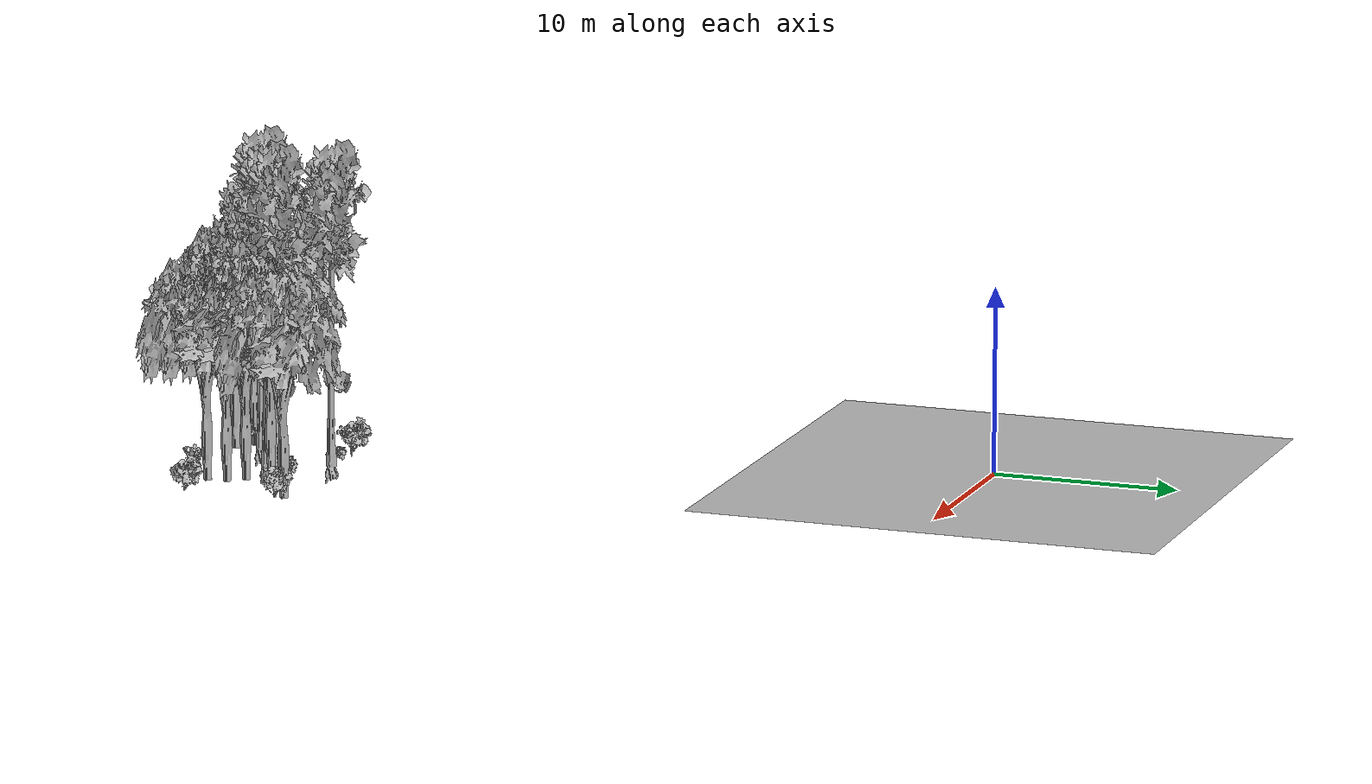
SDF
<sdf version="1.7">
 <world name="default">
  <model name="ground_plane">
   <static>1</static>
   <link name="link">
    <collision name="collision">
     <pose>-50 0 0 0 -0 0</pose>
     <geometry><plane><normal>0 0 1</normal><size>80 80</size></plane></geometry>
     <surface><contact><ode><min_depth>0.01</min_depth><max_vel>0</max_vel></ode></contact></surface>
    </collision>
    <visual name="grass">
     <cast_shadows>0</cast_shadows>
     <geometry>
      <mesh>
       <scale>0.46714285714285714 0.46714285714285714 0.1</scale>
       <uri>file://grass_plane/meshes/grass_plane.dae</uri>
      </mesh>
     </geometry>
    </visual>
   </link>
  </model>
  <model name="Tree 22">
   <static>1</static>
   <pose>10.140106296657272 -36.62080904243534 0 1.57079 -0 0</pose>
   <link name="link">
    <collision name="collision">
     <geometry><mesh><scale>3.5 5 3.5</scale><uri>model://tree_2/meshes/tree_2.obj</uri></mesh></geometry>
    </collision>
    <visual name="visual">
     <geometry><mesh><scale>3.5 5 3.5</scale><uri>model://tree_2/meshes/tree_2.obj</uri></mesh></geometry>
    </visual>
   </link>
  </model>
  <model name="Tree 114">
   <static>1</static>
   <pose>8.601114132843911 -37.45039912700223 0 1.57079 -0 0</pose>
   <link name="link">
    <collision name="collision">
     <geometry><mesh><scale>3.5 5 3.5</scale><uri>model://tree_2/meshes/tree_2.obj</uri></mesh></geometry>
    </collision>
    <visual name="visual">
     <geometry><mesh><scale>3.5 5 3.5</scale><uri>model://tree_2/meshes/tree_2.obj</uri></mesh></geometry>
    </visual>
   </link>
  </model>
  <model name="Tree 187">
   <static>1</static>
   <pose>15.042684136041537 -38.20178254437526 0 1.57079 -0 0</pose>
   <link name="link">
    <collision name="collision">
     <geometry><mesh><scale>3.5 5 3.5</scale><uri>model://tree_2/meshes/tree_2.obj</uri></mesh></geometry>
    </collision>
    <visual name="visual">
     <geometry><mesh><scale>3.5 5 3.5</scale><uri>model://tree_2/meshes/tree_2.obj</uri></mesh></geometry>
    </visual>
   </link>
  </model>
  <model name="Tree 194">
   <static>1</static>
   <pose>14.244863896788537 -36.35475052358592 0 1.57079 -0 0</pose>
   <link name="link">
    <collision name="collision">
     <geometry><mesh><scale>3.5 5 3.5</scale><uri>model://tree_2/meshes/tree_2.obj</uri></mesh></geometry>
    </collision>
    <visual name="visual">
     <geometry><mesh><scale>3.5 5 3.5</scale><uri>model://tree_2/meshes/tree_2.obj</uri></mesh></geometry>
    </visual>
   </link>
  </model>
  <model name="Tree 275">
   <static>1</static>
   <pose>12.33589048754775 -35.5190235360639 0 1.57079 -0 0</pose>
   <link name="link">
    <collision name="collision">
     <geometry><mesh><scale>3.5 5 3.5</scale><uri>model://tree_9/meshes/tree_9.obj</uri></mesh></geometry>
    </collision>
    <visual name="visual">
     <geometry><mesh><scale>3.5 5 3.5</scale><uri>model://tree_9/meshes/tree_9.obj</uri></mesh></geometry>
    </visual>
   </link>
  </model>
  <model name="Tree 280">
   <static>1</static>
   <pose>11.563860205906721 -36.37176999426789 0 1.57079 -0 0</pose>
   <link name="link">
    <collision name="collision">
     <geometry><mesh><scale>3.5 5 3.5</scale><uri>model://tree_9/meshes/tree_9.obj</uri></mesh></geometry>
    </collision>
    <visual name="visual">
     <geometry><mesh><scale>3.5 5 3.5</scale><uri>model://tree_9/meshes/tree_9.obj</uri></mesh></geometry>
    </visual>
   </link>
  </model>
  <model name="Tree 288">
   <static>1</static>
   <pose>8.31992528356809 -38.055443265212645 0 1.57079 -0 0</pose>
   <link name="link">
    <collision name="collision">
     <geometry><mesh><scale>3.5 5 3.5</scale><uri>model://tree_9/meshes/tree_9.obj</uri></mesh></geometry>
    </collision>
    <visual name="visual">
     <geometry><mesh><scale>3.5 5 3.5</scale><uri>model://tree_9/meshes/tree_9.obj</uri></mesh></geometry>
    </visual>
   </link>
  </model>
  <model name="Tree 296">
   <static>1</static>
   <pose>7.361264091994805 -38.75823483826605 0 1.57079 -0 0</pose>
   <link name="link">
    <collision name="collision">
     <geometry><mesh><scale>3.5 5 3.5</scale><uri>model://tree_2/meshes/tree_2.obj</uri></mesh></geometry>
    </collision>
    <visual name="visual">
     <geometry><mesh><scale>3.5 5 3.5</scale><uri>model://tree_2/meshes/tree_2.obj</uri></mesh></geometry>
    </visual>
   </link>
  </model>
  <model name="Tree 334">
   <static>1</static>
   <pose>14.908924499406197 -37.15016416535192 0 1.57079 -0 0</pose>
   <link name="link">
    <collision name="collision">
     <geometry><mesh><scale>3.5 5 3.5</scale><uri>model://tree_2/meshes/tree_2.obj</uri></mesh></geometry>
    </collision>
    <visual name="visual">
     <geometry><mesh><scale>3.5 5 3.5</scale><uri>model://tree_2/meshes/tree_2.obj</uri></mesh></geometry>
    </visual>
   </link>
  </model>
  <model name="Tree 381">
   <static>1</static>
   <pose>17.137150852641405 -33.0002705601656 0 1.57079 -0 0</pose>
   <link name="link">
    <collision name="collision">
     <geometry><mesh><scale>3.5 5 3.5</scale><uri>model://tree_2/meshes/tree_2.obj</uri></mesh></geometry>
    </collision>
    <visual name="visual">
     <geometry><mesh><scale>3.5 5 3.5</scale><uri>model://tree_2/meshes/tree_2.obj</uri></mesh></geometry>
    </visual>
   </link>
  </model>
  <model name="Tree 423">
   <static>1</static>
   <pose>10.337154866163274 -33.19234281782569 0 1.57079 -0 0</pose>
   <link name="link">
    <collision name="collision">
     <geometry><mesh><scale>3.5 5 3.5</scale><uri>model://tree_9/meshes/tree_9.obj</uri></mesh></geometry>
    </collision>
    <visual name="visual">
     <geometry><mesh><scale>3.5 5 3.5</scale><uri>model://tree_9/meshes/tree_9.obj</uri></mesh></geometry>
    </visual>
   </link>
  </model>
  <model name="Tree 444">
   <static>1</static>
   <pose>12.538800768981098 -35.67162886049819 0 1.57079 -0 0</pose>
   <link name="link">
    <collision name="collision">
     <geometry><mesh><scale>3.5 5 3.5</scale><uri>model://tree_2/meshes/tree_2.obj</uri></mesh></geometry>
    </collision>
    <visual name="visual">
     <geometry><mesh><scale>3.5 5 3.5</scale><uri>model://tree_2/meshes/tree_2.obj</uri></mesh></geometry>
    </visual>
   </link>
  </model>
  <model name="Tree 500">
   <static>1</static>
   <pose>8.252991384360229 -39.50127163905221 0 1.57079 -0 0</pose>
   <link name="link">
    <collision name="collision">
     <geometry><mesh><scale>3.5 5 3.5</scale><uri>model://tree_2/meshes/tree_2.obj</uri></mesh></geometry>
    </collision>
    <visual name="visual">
     <geometry><mesh><scale>3.5 5 3.5</scale><uri>model://tree_2/meshes/tree_2.obj</uri></mesh></geometry>
    </visual>
   </link>
  </model>
  <model name="Tree 503">
   <static>1</static>
   <pose>7.380431712626297 -39.71963837212715 0 1.57079 -0 0</pose>
   <link name="link">
    <collision name="collision">
     <geometry><mesh><scale>3.5 5 3.5</scale><uri>model://tree_2/meshes/tree_2.obj</uri></mesh></geometry>
    </collision>
    <visual name="visual">
     <geometry><mesh><scale>3.5 5 3.5</scale><uri>model://tree_2/meshes/tree_2.obj</uri></mesh></geometry>
    </visual>
   </link>
  </model>
  <model name="Bush 26">
   <static>1</static>
   <pose>17.480099860419806 -38.46243719897184 0 1.57079 -0 0</pose>
   <link name="link">
    <collision name="collision">
     <geometry><mesh><scale>2 2 2</scale><uri>model://bush_1/meshes/bush_1.obj</uri></mesh></geometry>
     <surface><contact><collide_without_contact>false</collide_without_contact></contact></surface>
    </collision>
    <visual name="visual">
     <geometry><mesh><scale>2 2 2</scale><uri>model://bush_1/meshes/bush_1.obj</uri></mesh></geometry>
    </visual>
   </link>
  </model>
  <model name="Bush 276">
   <static>1</static>
   <pose>7.679686236356865 -33.997223650128944 0 1.57079 -0 0</pose>
   <link name="link">
    <collision name="collision">
     <geometry><mesh><scale>2 2 2</scale><uri>model://bush_2/meshes/bush_2.obj</uri></mesh></geometry>
     <surface><contact><collide_without_contact>false</collide_without_contact></contact></surface>
    </collision>
    <visual name="visual">
     <geometry><mesh><scale>2 2 2</scale><uri>model://bush_2/meshes/bush_2.obj</uri></mesh></geometry>
    </visual>
   </link>
  </model>
  <model name="Bush 375">
   <static>1</static>
   <pose>11.096801275284257 -35.36017231787348 0 1.57079 -0 0</pose>
   <link name="link">
    <collision name="collision">
     <geometry><mesh><scale>2 2 2</scale><uri>model://bush_2/meshes/bush_2.obj</uri></mesh></geometry>
     <surface><contact><collide_without_contact>false</collide_without_contact></contact></surface>
    </collision>
    <visual name="visual">
     <geometry><mesh><scale>2 2 2</scale><uri>model://bush_2/meshes/bush_2.obj</uri></mesh></geometry>
    </visual>
   </link>
  </model>
  <model name="Bush 414">
   <static>1</static>
   <pose>13.490014237601727 -39.739296458474335 0 1.57079 -0 0</pose>
   <link name="link">
    <collision name="collision">
     <geometry><mesh><scale>2 2 2</scale><uri>model://bush_4/meshes/bush_4.obj</uri></mesh></geometry>
     <surface><contact><collide_without_contact>false</collide_without_contact></contact></surface>
    </collision>
    <visual name="visual">
     <geometry><mesh><scale>2 2 2</scale><uri>model://bush_4/meshes/bush_4.obj</uri></mesh></geometry>
    </visual>
   </link>
  </model>
  <model name="Bush 417">
   <static>1</static>
   <pose>8.05699158288457 -32.990822601246855 0 1.57079 -0 0</pose>
   <link name="link">
    <collision name="collision">
     <geometry><mesh><scale>2 2 2</scale><uri>model://bush_5/meshes/bush_5.obj</uri></mesh></geometry>
     <surface><contact><collide_without_contact>false</collide_without_contact></contact></surface>
    </collision>
    <visual name="visual">
     <geometry><mesh><scale>2 2 2</scale><uri>model://bush_5/meshes/bush_5.obj</uri></mesh></geometry>
    </visual>
   </link>
  </model>
  <model name="Bush 463">
   <static>1</static>
   <pose>6.964604320226329 -33.31311227280018 0 1.57079 -0 0</pose>
   <link name="link">
    <collision name="collision">
     <geometry><mesh><scale>2 2 2</scale><uri>model://bush_1/meshes/bush_1.obj</uri></mesh></geometry>
     <surface><contact><collide_without_contact>false</collide_without_contact></contact></surface>
    </collision>
    <visual name="visual">
     <geometry><mesh><scale>2 2 2</scale><uri>model://bush_1/meshes/bush_1.obj</uri></mesh></geometry>
    </visual>
   </link>
  </model>
  <model name="Bush 499">
   <static>1</static>
   <pose>7.049102704856381 -39.423959830473294 0 1.57079 -0 0</pose>
   <link name="link">
    <collision name="collision">
     <geometry><mesh><scale>2 2 2</scale><uri>model://bush_1/meshes/bush_1.obj</uri></mesh></geometry>
     <surface><contact><collide_without_contact>false</collide_without_contact></contact></surface>
    </collision>
    <visual name="visual">
     <geometry><mesh><scale>2 2 2</scale><uri>model://bush_1/meshes/bush_1.obj</uri></mesh></geometry>
    </visual>
   </link>
  </model>
  <model name="Bush 556">
   <static>1</static>
   <pose>10.405117725829761 -35.79598929047706 0 1.57079 -0 0</pose>
   <link name="link">
    <collision name="collision">
     <geometry><mesh><scale>2 2 2</scale><uri>model://bush_2/meshes/bush_2.obj</uri></mesh></geometry>
     <surface><contact><collide_without_contact>false</collide_without_contact></contact></surface>
    </collision>
    <visual name="visual">
     <geometry><mesh><scale>2 2 2</scale><uri>model://bush_2/meshes/bush_2.obj</uri></mesh></geometry>
    </visual>
   </link>
  </model>
  <model name="Bush 564">
   <static>1</static>
   <pose>17.18890127921886 -33.506836684238486 0 1.57079 -0 0</pose>
   <link name="link">
    <collision name="collision">
     <geometry><mesh><scale>2 2 2</scale><uri>model://bush_1/meshes/bush_1.obj</uri></mesh></geometry>
     <surface><contact><collide_without_contact>false</collide_without_contact></contact></surface>
    </collision>
    <visual name="visual">
     <geometry><mesh><scale>2 2 2</scale><uri>model://bush_1/meshes/bush_1.obj</uri></mesh></geometry>
    </visual>
   </link>
  </model>
 </world>
</sdf>
